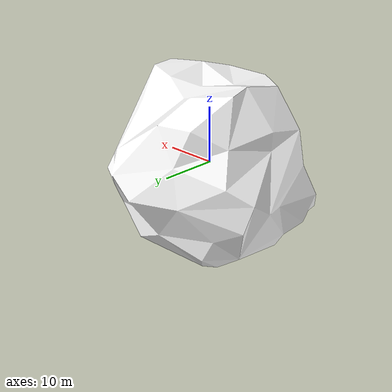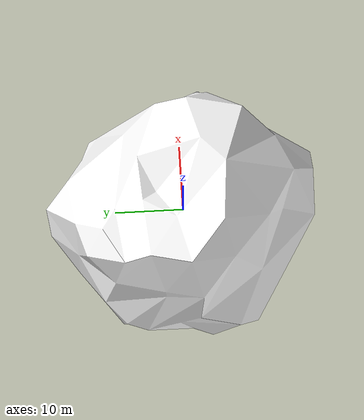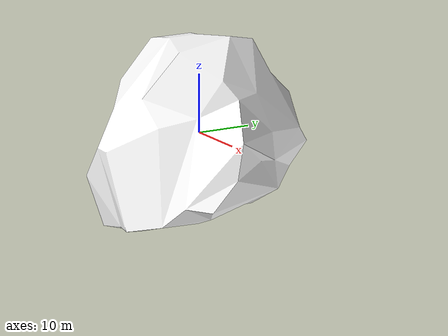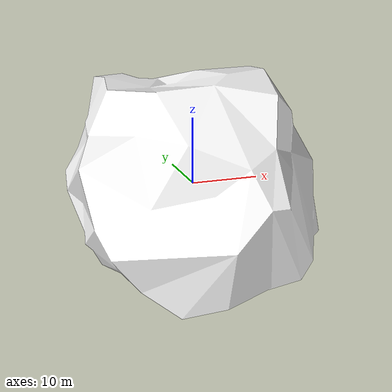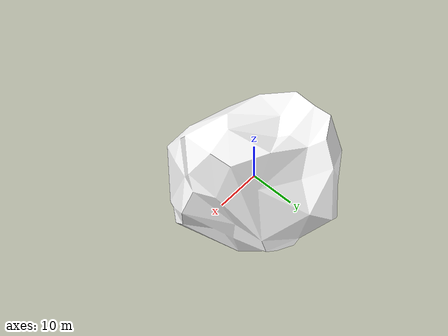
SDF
<?xml version="1.0" ?>
<sdf version="1.6">
    <model name="falling_rock2">
        <link name="base_link">
            <inertial>
                <pose>-0.014732 -0.014451 0.003710 0 0 0</pose>
                <mass>646.508</mass>
                <inertia>
                    <ixx>49.62</ixx>
                    <ixy>4.08</ixy>
                    <ixz>-0.324</ixz>
                    <iyy>46.472</iyy>
                    <iyz>-3.926</iyz>
                    <izz>51.062</izz>
                </inertia>
            </inertial>
            <collision name="collision">
                <geometry>
                    <mesh>
                        <scale>40 40 40</scale>
            <uri>meshes/FallingRock02_Collider.dae</uri>
                    </mesh>
                </geometry>
            </collision>
            <visual name="visual">
                <geometry>
                    <mesh>
                        <scale>40 40 40</scale>
            <uri>meshes/FallingRock02.dae</uri>
                    </mesh>
                </geometry>
                <material>
                    <diffuse>1.0 1.0 1.0</diffuse>
                    <specular>1.0 1.0 1.0</specular>
                    <pbr>
                        <metal>
                            <albedo_map>https://fuel.gazebosim.org/1.0/openrobotics/models/falling rock 2/6/files/materials/textures/FallingRocks_Albedo.jpg</albedo_map>
                            <normal_map>https://fuel.gazebosim.org/1.0/openrobotics/models/falling rock 2/6/files/materials/textures/FallingRocks_Normal.jpg</normal_map>
                            <roughness_map>https://fuel.gazebosim.org/1.0/openrobotics/models/falling rock 2/6/files/materials/textures/FallingRocks_Roughness.jpg</roughness_map>
                        </metal>
                    </pbr>
                    <!-- fallback to script if no PBR support-->
                    <script>
                        <uri>https://fuel.gazebosim.org/1.0/openrobotics/models/falling rock 2/6/files/materials/scripts</uri>
                        <uri>https://fuel.gazebosim.org/1.0/openrobotics/models/falling rock 2/6/files/materials/textures</uri>
                        <name>FallingRocks/FallingRocks_Diffuse</name>
                    </script>
                </material>
            </visual>
        </link>
    </model>
</sdf>
